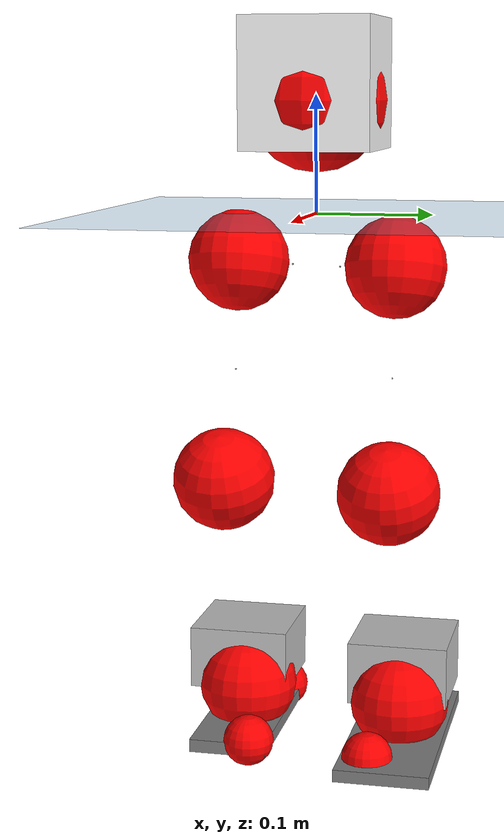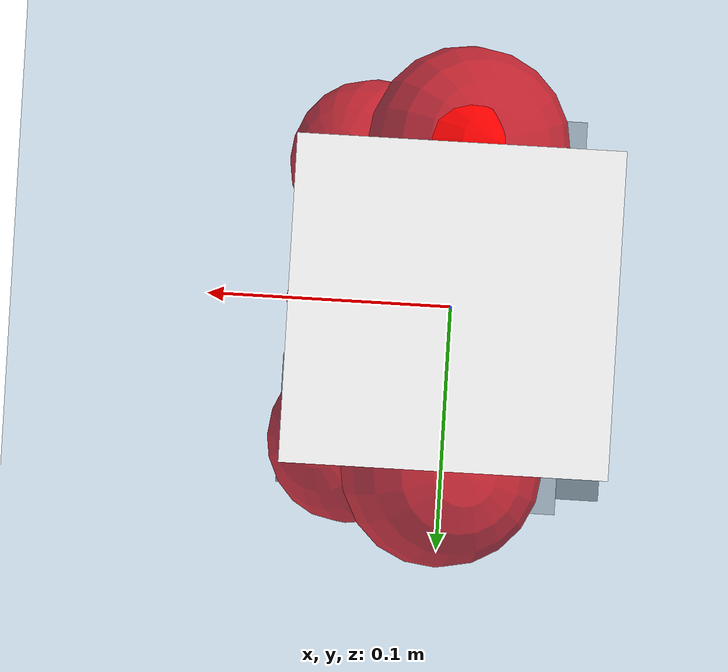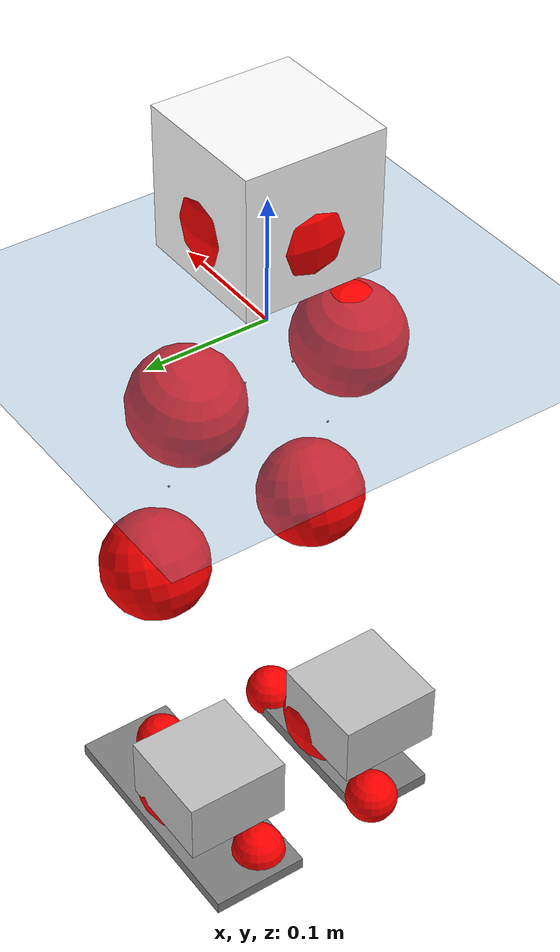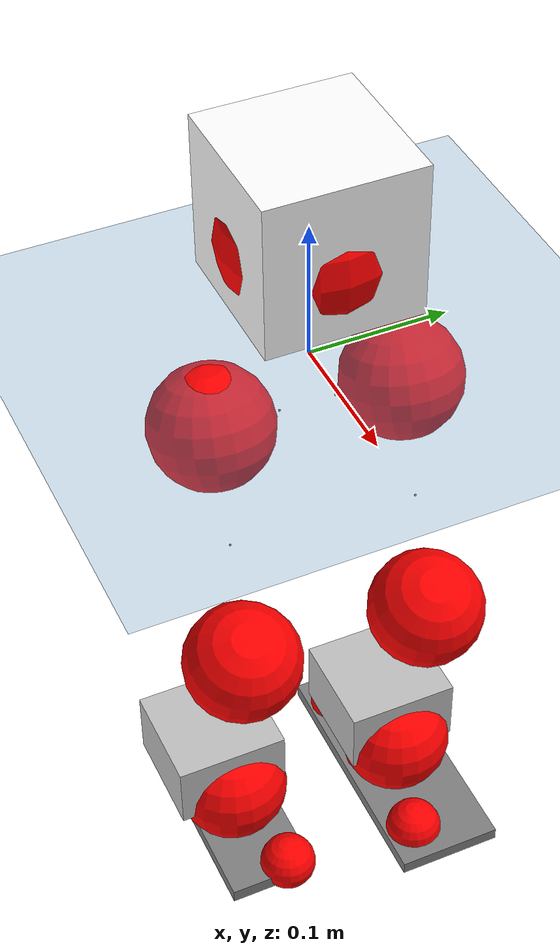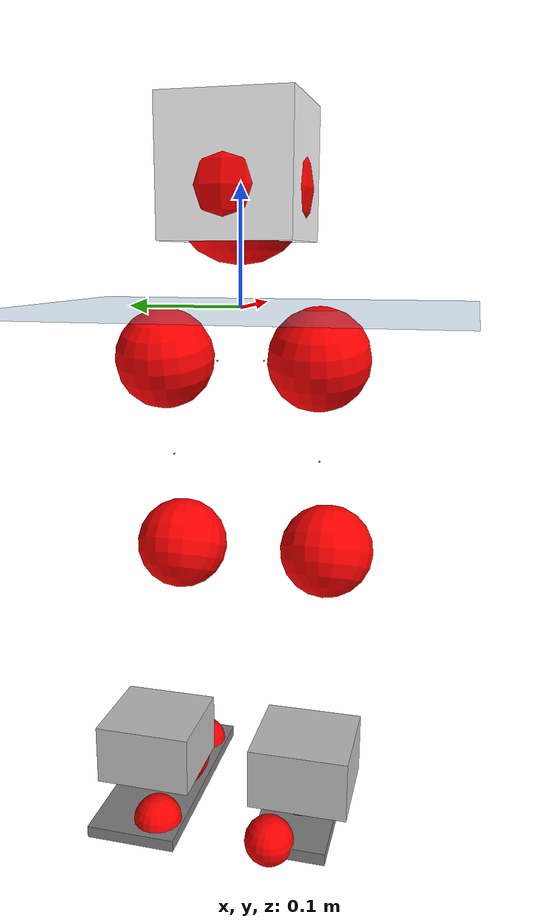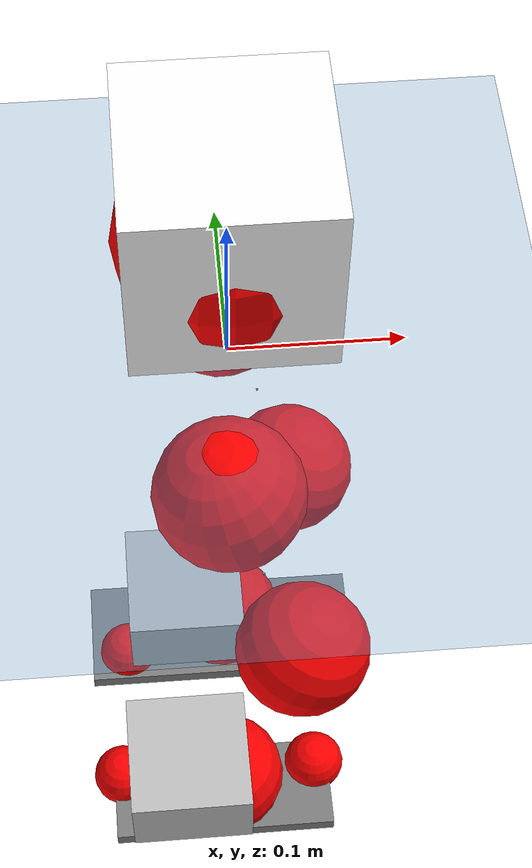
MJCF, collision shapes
<mujoco model="pi_12dof_release_v1">
  <compiler angle="radian" assetdir="assets" balanceinertia="true" inertiafromgeom="false"/>

  <option timestep="0.005" density="1.2" viscosity="2e-05"/>

  <size nkey="1"/>

  <visual>
    <quality shadowsize="8192"/>
    <map shadowclip="0.5"/>
  </visual>

  <default>
    <default class="/">
      <joint armature="0.01" damping="0.01" frictionloss="0.01"/>
      <geom contype="0" conaffinity="0" group="1" solref="-1000 -80"/>
      <site size="0.01 0.005 0.005" group="5"/>
      <general forcelimited="true" biastype="affine" gainprm="20" biasprm="0 -20 -0.5"/>
      <default class="foot">
        <geom size="0.0845 0.036 0.005" type="box" condim="6" group="4" priority="1" friction="0.9 0.2 0.2" solimp="0.015 1 0.005"/>
      </default>
      <default class="reward_collision_sphere">
        <geom group="5" rgba="1 0 0 1"/>
      </default>
    </default>
  </default>

  <asset>
    <texture type="skybox" colorspace="auto" name="//unnamed_texture_0" builtin="gradient" rgb1="0.95 0.95 0.95" rgb2="0.95 0.95 0.95" width="100" height="600"/>
    <texture type="2d" colorspace="auto" name="texplane" builtin="checker" rgb1="0.345 0.575 0.748" rgb2="0.345 0.575 0.748" markrgb="1 1 1" width="512" height="512"/>
    <material name="MatPlane" class="/" texture="texplane" texuniform="true" texrepeat="2 2" specular="0.9"/>
    <mesh name="baselink_1" class="/" file="baselink_1.STL"/>
    <mesh name="r_hip_pitch_link" class="/" file="r_hip_pitch_link.STL"/>
    <mesh name="r_hip_roll_link" class="/" file="r_hip_roll_link.STL"/>
    <mesh name="r_thigh_link" class="/" file="r_thigh_link.STL"/>
    <mesh name="r_calf_link" class="/" file="r_calf_link.STL"/>
    <mesh name="r_ankle_pitch_link" class="/" file="r_ankle_pitch_link.STL"/>
    <mesh name="r_ankle_roll_link" class="/" file="r_ankle_roll_link.STL"/>
    <mesh name="l_hip_pitch_link" class="/" file="l_hip_pitch_link.STL"/>
    <mesh name="l_hip_roll_link" class="/" file="l_hip_roll_link.STL"/>
    <mesh name="l_thigh_link" class="/" file="l_thigh_link.STL"/>
    <mesh name="l_calf_link" class="/" file="l_calf_link.STL"/>
    <mesh name="l_ankle_pitch_link" class="/" file="l_ankle_pitch_link.STL"/>
    <mesh name="l_ankle_roll_link" class="/" file="l_ankle_roll_link.STL"/>
  </asset>

  <worldbody>
    <geom name="floor" class="/" size="100 100 0.125" type="plane" group="0" material="MatPlane"/>
    <light name="toplight_shadow" class="/" pos="0 0 5" dir="0.0990148 0.0990148 -0.990148" type="directional" ambient="0.04 0.04 0.04" diffuse="0.55 0.55 0.55" specular="0.12 0.12 0.12"/>
    <light name="toplight_fill" class="/" pos="0 0 5" dir="0.0990148 0.0990148 -0.990148" type="directional" castshadow="false" ambient="0.04 0.04 0.04" diffuse="0.3 0.3 0.3" specular="0.08 0.08 0.08"/>
    <body name="trunk" pos="2.35691e-05 -2.20724e-05 -0.00110552" quat="1 -0.000210557 0.000306832 8.88978e-06">
      <inertial pos="0.00265778 -0.00154931 0.0556636" quat="0.695417 0.00967015 0.00932409 0.718481" mass="2.84606" diaginertia="0.0131914 0.00394941 0.0198644"/>
      <joint name="//unnamed_joint_0" type="free"/>
      <geom name="//unnamed_geom_1" class="/" type="mesh" density="0" rgba="1 1 1 1" mesh="baselink_1"/>
      <geom name="//unnamed_geom_2" class="/" size="0.0549384 0.0549384 0.0549384" pos="0 0 0.109888" type="box" rgba="1 1 1 1"/>
      <geom name="//unnamed_geom_3" class="reward_collision_sphere" size="0.0604323" pos="0 0 0.0961521"/>
      <site name="imu" class="/" pos="0.0134412 -0.0108727 0.0134462" size="0.0109877"/>
      <camera name="track" class="/" pos="0 -1.70541 0" quat="0.707107 0.707107 0 0" mode="trackcom"/>
      <camera name="ego_camera" class="/" pos="0.08025 0 0.247248" quat="-0.5 -0.5 0.5 0.5"/>
      <body name="r_hip_pitch_link" pos="-0.00203592 -0.0210925 -0.0428905" quat="0.992047 -0.000558069 -0.125869 0.000359561">
        <inertial pos="0.00132236 -0.0486 -0.00267545" quat="-0.0253945 0.707068 -0.029429 0.706076" mass="0.460426" diaginertia="0.000146827 4.15684e-05 0.000403237"/>
        <joint name="r_hip_pitch_joint" class="/" pos="0 0 0" axis="-0.00150505 -0.999939 -0.0109477" stiffness="0.000238192" range="-1.77373 1.2216" armature="0.00986064" damping="0.00480646" frictionloss="0.0105842"/>
        <geom name="//unnamed_geom_4" class="/" type="mesh" density="0" rgba="0.75294 0.75294 0.75294 1" mesh="r_hip_pitch_link"/>
        <geom name="//unnamed_geom_5" class="/" size="0.000549384 0.000549384 0.000549384" type="box" rgba="0.75294 0.75294 0.75294 1"/>
        <body name="r_hip_roll_link" pos="-0.00151098 -0.0481547 0.00269003" quat="1 5.48411e-05 -0.000133833 0.00011318">
          <inertial pos="-0.00188364 0.000586327 -0.0856699" quat="0.705752 -0.0814608 -0.0839071 0.69874" mass="0.535884" diaginertia="0.000464513 0.000127334 0.000652481"/>
          <joint name="r_hip_roll_joint" class="/" pos="0 0 0" axis="-0.999998 -0.00172167 0.00036402" range="-0.126727 0.488909" armature="0.0101478" damping="0.0357339" frictionloss="0.0121287"/>
          <geom name="//unnamed_geom_6" class="/" type="mesh" density="0" rgba="0.75294 0.75294 0.75294 1" mesh="r_hip_roll_link"/>
          <geom name="//unnamed_geom_7" class="/" size="0.000549384 0.000549384 0.000549384" type="box" rgba="0.75294 0.75294 0.75294 1"/>
          <geom name="//unnamed_geom_8" class="reward_collision_sphere" size="0.0439507"/>
          <body name="r_thigh_link" pos="-0.002901 0.00145108 -0.0946254" quat="1 -0.000182831 0.000148685 -0.000513305">
            <inertial pos="0.00107981 0.000702877 -0.0640291" quat="0.737109 0.675774 -0.000179299 -2.54733e-05" mass="0.143006" diaginertia="0.00017485 4.35629e-05 0.000280326"/>
            <joint name="r_thigh_joint" class="/" pos="0 0 0" axis="0.000351828 6.5389e-05 -1" range="-0.295204 0.57625" armature="0.0109887" damping="0.00898007" frictionloss="0.0104813"/>
            <geom name="//unnamed_geom_9" class="/" type="mesh" density="0" rgba="0.75294 0.75294 0.75294 1" mesh="r_thigh_link"/>
            <geom name="//unnamed_geom_10" class="/" size="0.000549384 0.000549384 0.000549384" type="box" rgba="0.75294 0.75294 0.75294 1"/>
            <body name="r_calf_link" pos="0.00230466 -0.00432357 -0.0954047" quat="0.94765 -3.33756e-05 0.31931 -5.54239e-05">
              <inertial pos="0.000485661 0.00127763 -0.0977886" quat="0.999983 -0.000796449 -0.00194025 0.00536846" mass="1.12669" diaginertia="0.00499127 0.00154652 0.000852379"/>
              <joint name="r_calf_joint" class="/" pos="0 0 0" axis="0.00545457 -0.999941 -0.00944087" range="-1.70256 0.65331" armature="0.0112567" damping="0.00930888" frictionloss="0.00958416"/>
              <geom name="//unnamed_geom_11" class="/" type="mesh" density="0" rgba="0.75294 0.75294 0.75294 1" mesh="r_calf_link"/>
              <geom name="//unnamed_geom_12" class="/" size="0.000549384 0.000549384 0.000549384" type="box" rgba="0.75294 0.75294 0.75294 1"/>
              <geom name="//unnamed_geom_13" class="reward_collision_sphere" size="0.0439507"/>
              <body name="r_ankle_pitch_link" pos="-0.00249112 0.00214276 -0.192362" quat="0.979971 -0.00107223 -0.199137 0.000333529">
                <inertial pos="0.00445697 0.00172506 -2.49797e-05" quat="0.00168695 0.707787 -6.66812e-05 0.706424" mass="0.218792" diaginertia="0.000423759 9.34972e-05 0.00057998"/>
                <joint name="r_ankle_pitch_joint" class="/" pos="0 0 0" axis="0.00784539 -0.999931 0.00871235" range="-1.32898 0.552008" armature="0.0109884" damping="0.0028022" frictionloss="0.0108649"/>
                <geom name="//unnamed_geom_14" class="/" type="mesh" density="0" rgba="0.75294 0.75294 0.75294 1" mesh="r_ankle_pitch_link"/>
                <geom name="//unnamed_geom_15" class="/" size="0.042852 0.0439507 0.0274692" type="box" rgba="0.75294 0.75294 0.75294 1"/>
                <body name="r_ankle_roll_link" pos="0.0788115 0.00534715 0.00187797" quat="1 0.000330227 -0.000599111 -0.00044062">
                  <inertial pos="-0.0280148 -0.00213578 -0.0220904" quat="0.550437 0.437803 0.439185 0.558985" mass="0.711796" diaginertia="0.00161828 0.000467504 0.00139323"/>
                  <joint name="r_ankle_roll_joint" class="/" pos="0 0 0" axis="-0.999995 0.00124971 0.00303525" stiffness="0.00828934" range="-0.13073 0.118816" armature="0.0108762" damping="0.00825703" frictionloss="0.00956798"/>
                  <geom name="//unnamed_geom_16" class="/" type="mesh" density="0" rgba="0.75294 0.75294 0.75294 1" mesh="r_ankle_roll_link"/>
                  <geom name="//unnamed_geom_17" class="/" type="mesh" rgba="0.75294 0.75294 0.75294 1" mesh="r_ankle_roll_link"/>
                  <geom name="right_foot" class="foot" size="0.0808767 0.0337572 0.00562799" pos="-0.05457 0 -0.0604385"/>
                  <geom name="//unnamed_geom_19" class="reward_collision_sphere" size="0.0439507" pos="-0.0535 0 -0.027472"/>
                  <geom name="//unnamed_geom_20" class="reward_collision_sphere" size="0.0219754" pos="0.01605 0.0170541 -0.0549441"/>
                  <geom name="//unnamed_geom_21" class="reward_collision_sphere" size="0.0219754" pos="-0.1284 0.0170541 -0.0549441"/>
                  <site name="right_foot" class="foot" pos="-0.05457 0 -0.0604385" size="0.0109877"/>
                </body>
              </body>
            </body>
          </body>
        </body>
      </body>
      <body name="l_hip_pitch_link" pos="-0.00207157 0.0201868 -0.0440999" quat="0.992187 0.000707788 -0.124758 -0.000292917">
        <inertial pos="-0.0015327 0.0464561 0.00179891" quat="-0.0414965 0.706674 0.0460498 0.704819" mass="0.537601" diaginertia="0.000186246 4.835e-05 0.000477147"/>
        <joint name="l_hip_pitch_joint" class="/" pos="0 0 0" axis="-0.0010611 0.999999 0.000125896" stiffness="0.00158403" range="-1.2418 1.77346" armature="0.0120747" damping="0.0217992" frictionloss="0.0110277"/>
        <geom name="//unnamed_geom_22" class="/" type="mesh" density="0" rgba="0.75294 0.75294 0.75294 1" mesh="l_hip_pitch_link"/>
        <geom name="//unnamed_geom_23" class="/" size="0.000549384 0.000549384 0.000549384" type="box" rgba="0.75294 0.75294 0.75294 1"/>
        <body name="l_hip_roll_link" pos="0.00194744 0.0486964 -3.40157e-05" quat="0.999999 -0.000937657 0.000341608 -0.000820857">
          <inertial pos="-0.00388733 -0.00130255 -0.0829826" quat="0.695405 -0.0777675 -0.0904259 0.708652" mass="0.505174" diaginertia="0.000449103 0.000119668 0.000636264"/>
          <joint name="l_hip_roll_joint" class="/" pos="0 0 0" axis="-0.999926 0.00132282 0.0120783" range="-0.557123 0.147488" armature="0.0121923" damping="0.0119378" frictionloss="0.0112976"/>
          <geom name="//unnamed_geom_24" class="/" type="mesh" density="0" rgba="0.75294 0.75294 0.75294 1" mesh="l_hip_roll_link"/>
          <geom name="//unnamed_geom_25" class="/" size="0.000549384 0.000549384 0.000549384" type="box" rgba="0.75294 0.75294 0.75294 1"/>
          <geom name="//unnamed_geom_26" class="reward_collision_sphere" size="0.0439507"/>
          <body name="l_thigh_link" pos="0.00106451 0.00167086 -0.0947263" quat="1 2.47191e-05 1.88099e-05 2.68666e-05">
            <inertial pos="0.000457762 -0.00429627 -0.0663273" quat="0.675828 0.737059 -0.00074327 0.000286481" mass="0.144422" diaginertia="0.000162319 4.03101e-05 0.000259924"/>
            <joint name="l_thigh_joint" class="/" pos="0 0 0" axis="0.00773008 0.00817648 -0.999937" range="-0.551671 0.304687" armature="0.00960379" damping="0.00815577" frictionloss="0.0103906"/>
            <geom name="//unnamed_geom_27" class="/" type="mesh" density="0" rgba="0.75294 0.75294 0.75294 1" mesh="l_thigh_link"/>
            <geom name="//unnamed_geom_28" class="/" size="0.000549384 0.000549384 0.000549384" type="box" rgba="0.75294 0.75294 0.75294 1"/>
            <body name="l_calf_link" pos="-0.00157893 0.00109353 -0.097254" quat="0.947661 -0.000137225 0.319278 -3.38382e-05">
              <inertial pos="0.00215937 0.00519277 -0.0984064" quat="0.999867 -0.00138786 0.0107938 0.0121699" mass="1.02555" diaginertia="0.00494995 0.00150048 0.000832281"/>
              <joint name="l_calf_joint" class="/" pos="0 0 0" axis="-0.00281492 0.999996 -0.000230824" stiffness="0.0107219" range="-0.604946 1.60316" armature="0.0114963" damping="0.0197785" frictionloss="0.0100803"/>
              <geom name="//unnamed_geom_29" class="/" type="mesh" density="0" rgba="0.75294 0.75294 0.75294 1" mesh="l_calf_link"/>
              <geom name="//unnamed_geom_30" class="/" size="0.000549384 0.000549384 0.000549384" type="box" rgba="0.75294 0.75294 0.75294 1"/>
              <geom name="//unnamed_geom_31" class="reward_collision_sphere" size="0.0439507"/>
              <body name="l_ankle_pitch_link" pos="-0.00120857 0.00341565 -0.189679" quat="0.980051 0.000286377 -0.198746 -0.000551479">
                <inertial pos="0.00487167 -0.00380548 0.00215636" quat="-0.00105233 0.706229 0.00347382 0.707975" mass="0.242087" diaginertia="0.000449062 0.00010489 0.000604098"/>
                <joint name="l_ankle_pitch_joint" class="/" pos="0 0 0" axis="-0.00240084 0.999975 0.0066048" range="-0.480843 1.28331" armature="0.0104744" damping="0.0143858" frictionloss="0.00974637"/>
                <geom name="//unnamed_geom_32" class="/" type="mesh" density="0" rgba="0.75294 0.75294 0.75294 1" mesh="l_ankle_pitch_link"/>
                <geom name="//unnamed_geom_33" class="/" size="0.042852 0.0439507 0.0274692" type="box" rgba="0.75294 0.75294 0.75294 1"/>
                <body name="l_ankle_roll_link" pos="0.0819812 0.000679292 0.00129626" quat="1 -0.000224584 -0.000336555 2.76433e-05">
                  <inertial pos="-0.0232325 0.000202564 -0.0198645" quat="0.562586 0.431964 0.439388 0.551219" mass="0.676111" diaginertia="0.00157629 0.000436333 0.00129228"/>
                  <joint name="l_ankle_roll_joint" class="/" pos="0 0 0" axis="-0.999886 0.00883625 -0.0122536" range="-0.151402 0.217902" armature="0.0110555" damping="0.0167618" frictionloss="0.0125555"/>
                  <geom name="//unnamed_geom_34" class="/" type="mesh" density="0" rgba="0.75294 0.75294 0.75294 1" mesh="l_ankle_roll_link"/>
                  <geom name="//unnamed_geom_35" class="/" type="mesh" rgba="0.75294 0.75294 0.75294 1" mesh="l_ankle_roll_link"/>
                  <geom name="left_foot" class="foot" size="0.102137 0.040843 0.00533056" pos="-0.05457 0 -0.0604385"/>
                  <geom name="//unnamed_geom_37" class="reward_collision_sphere" size="0.0439507" pos="-0.0535 0 -0.027472"/>
                  <geom name="//unnamed_geom_38" class="reward_collision_sphere" size="0.0219754" pos="0.01605 -0.0170541 -0.0549441"/>
                  <geom name="//unnamed_geom_39" class="reward_collision_sphere" size="0.0219754" pos="-0.1284 -0.0170541 -0.0549441"/>
                  <site name="left_foot" class="foot" pos="-0.05457 0 -0.0604385" size="0.0109877"/>
                </body>
              </body>
            </body>
          </body>
        </body>
      </body>
    </body>
  </worldbody>

  <contact>
    <pair class="/" geom1="floor" geom2="right_foot" name="//unnamed_contact_1"/>
    <pair class="/" geom1="floor" geom2="left_foot" name="//unnamed_contact_0"/>
  </contact>

  <actuator>
    <general name="r_hip_pitch_joint" class="/" joint="r_hip_pitch_joint" forcerange="-22.175 22.175" gainprm="20.5612" biasprm="0 -20.5612 -0.584766"/>
    <general name="r_hip_roll_joint" class="/" joint="r_hip_roll_joint" forcerange="-23.4778 23.4778" gainprm="20.5612" biasprm="0 -20.5612 -0.584766"/>
    <general name="r_thigh_joint" class="/" joint="r_thigh_joint" forcerange="-21.5463 21.5463" gainprm="20.5612" biasprm="0 -20.5612 -0.584766"/>
    <general name="r_calf_joint" class="/" joint="r_calf_joint" forcerange="-25.3753 25.3753" gainprm="20.5612" biasprm="0 -20.5612 -0.584766"/>
    <general name="r_ankle_pitch_joint" class="/" joint="r_ankle_pitch_joint" forcerange="-24.4952 24.4952" gainprm="20.5612" biasprm="0 -20.5612 -0.584766"/>
    <general name="r_ankle_roll_joint" class="/" joint="r_ankle_roll_joint" forcerange="-22.1969 22.1969" gainprm="20.5612" biasprm="0 -20.5612 -0.584766"/>
    <general name="l_hip_pitch_joint" class="/" joint="l_hip_pitch_joint" forcerange="-21.2215 21.2215" gainprm="20.5612" biasprm="0 -20.5612 -0.584766"/>
    <general name="l_hip_roll_joint" class="/" joint="l_hip_roll_joint" forcerange="-25.4511 25.4511" gainprm="20.5612" biasprm="0 -20.5612 -0.584766"/>
    <general name="l_thigh_joint" class="/" joint="l_thigh_joint" forcerange="-25.163 25.163" gainprm="20.5612" biasprm="0 -20.5612 -0.584766"/>
    <general name="l_calf_joint" class="/" joint="l_calf_joint" forcerange="-20.8196 20.8196" gainprm="20.5612" biasprm="0 -20.5612 -0.584766"/>
    <general name="l_ankle_pitch_joint" class="/" joint="l_ankle_pitch_joint" forcerange="-25.3716 25.3716" gainprm="20.5612" biasprm="0 -20.5612 -0.584766"/>
    <general name="l_ankle_roll_joint" class="/" joint="l_ankle_roll_joint" forcerange="-20.9172 20.9172" gainprm="20.5612" biasprm="0 -20.5612 -0.584766"/>
  </actuator>

  <sensor>
    <gyro site="imu" name="imu_angular_velocity"/>
    <velocimeter site="imu" name="imu_linear_velocity"/>
    <framelinvel objtype="site" objname="left_foot" name="left_foot_global_linear_velocity"/>
    <framelinvel objtype="site" objname="right_foot" name="right_foot_global_linear_velocity"/>
  </sensor>

  <keyframe>
    <key name="home" qpos="0 0 0.291 1 0 0 0 0.4 0 0 -0.8 0.4 0 -0.4 0 0 0.8 -0.4 0"/>
  </keyframe>
</mujoco>
